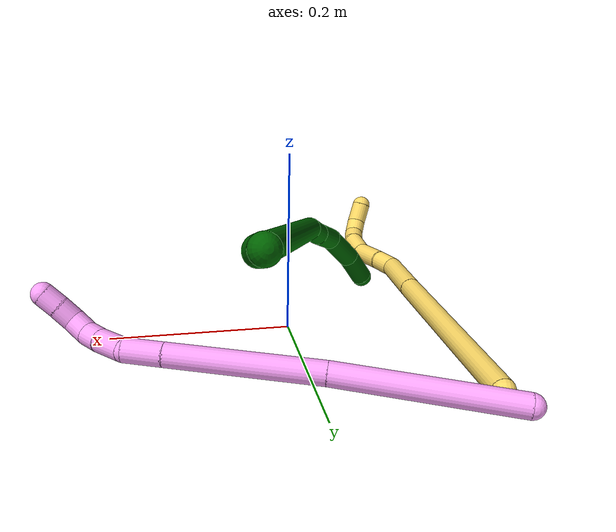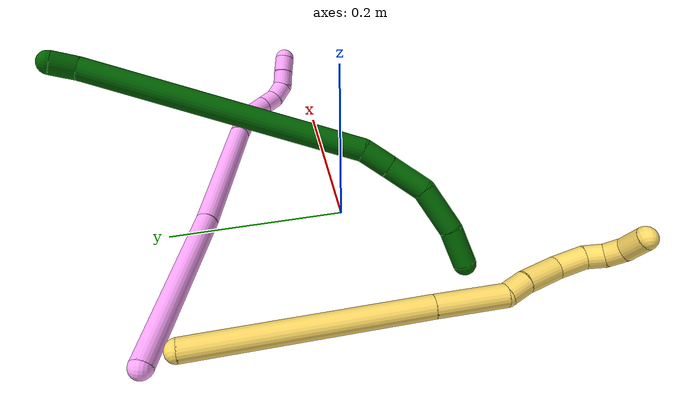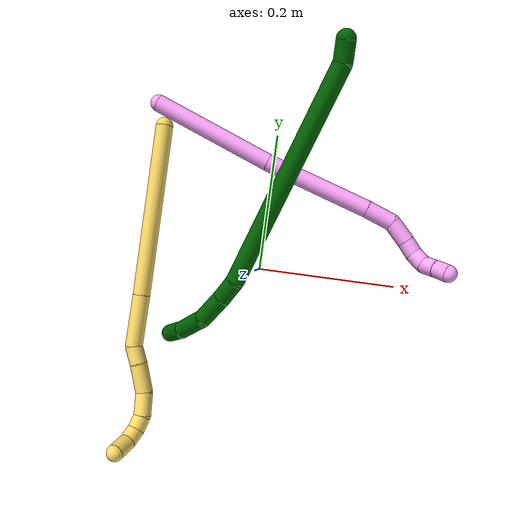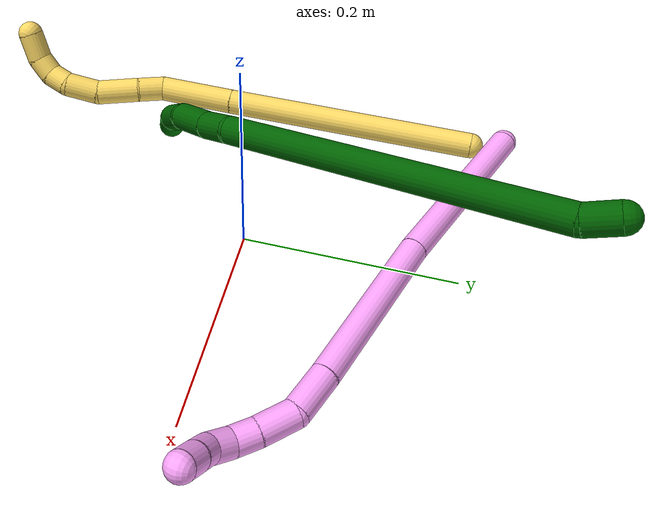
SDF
<sdf version="1.7">
 <world name="default">
  <model name="4">
   <static>0</static>
   <link name="4">
    <collision name="collision-cylinder-e_1_1_4">
     <pose>0.089773 0.014022 0.013473 -0.805356 1.35748 -0.661864</pose>
     <geometry><cylinder><radius>0.0125</radius><length>0.18371</length></cylinder></geometry>
     <surface>
      <friction><ode><mu>1.16</mu><mu2>1.16</mu2><slip1>0</slip1><slip2>0</slip2></ode></friction>
      <contact><ode><kp>1e+06</kp><kd>1</kd><max_vel>0</max_vel><min_depth>0.001</min_depth></ode></contact>
     </surface>
    </collision>
    <visual name="visual-cylinder-e_1_1_4">
     <pose>0.089773 0.014022 0.013473 -0.805356 1.35748 -0.661864</pose>
     <geometry><cylinder><radius>0.0125</radius><length>0.18371</length></cylinder></geometry>
     <material><ambient>1 0.65098 0.996078 1</ambient></material>
    </visual>
    <collision name="collision-cylinder-e_2_4_5">
     <pose>0.257424 0.038102 0.033979 -0.960583 1.41448 -0.837886</pose>
     <geometry><cylinder><radius>0.0125</radius><length>0.157678</length></cylinder></geometry>
     <surface>
      <friction><ode><mu>1.16</mu><mu2>1.16</mu2><slip1>0</slip1><slip2>0</slip2></ode></friction>
      <contact><ode><kp>1e+06</kp><kd>1</kd><max_vel>0</max_vel><min_depth>0.001</min_depth></ode></contact>
     </surface>
    </collision>
    <visual name="visual-cylinder-e_2_4_5">
     <pose>0.257424 0.038102 0.033979 -0.960583 1.41448 -0.837886</pose>
     <geometry><cylinder><radius>0.0125</radius><length>0.157678</length></cylinder></geometry>
     <material><ambient>1 0.65098 0.996078 1</ambient></material>
    </visual>
    <collision name="collision-cylinder-e_3_5_6">
     <pose>0.355517 0.050403 0.043936 -0.654278 1.39051 -0.551714</pose>
     <geometry><cylinder><radius>0.0125</radius><length>0.041097</length></cylinder></geometry>
     <surface>
      <friction><ode><mu>1.16</mu><mu2>1.16</mu2><slip1>0</slip1><slip2>0</slip2></ode></friction>
      <contact><ode><kp>1e+06</kp><kd>1</kd><max_vel>0</max_vel><min_depth>0.001</min_depth></ode></contact>
     </surface>
    </collision>
    <visual name="visual-cylinder-e_3_5_6">
     <pose>0.355517 0.050403 0.043936 -0.654278 1.39051 -0.551714</pose>
     <geometry><cylinder><radius>0.0125</radius><length>0.041097</length></cylinder></geometry>
     <material><ambient>1 0.65098 0.996078 1</ambient></material>
    </visual>
    <collision name="collision-cylinder-e_4_6_7">
     <pose>0.389403 0.055108 0.056036 -0.262188 0.963411 -0.13764</pose>
     <geometry><cylinder><radius>0.0125</radius><length>0.033296</length></cylinder></geometry>
     <surface>
      <friction><ode><mu>1.16</mu><mu2>1.16</mu2><slip1>0</slip1><slip2>0</slip2></ode></friction>
      <contact><ode><kp>1e+06</kp><kd>1</kd><max_vel>0</max_vel><min_depth>0.001</min_depth></ode></contact>
     </surface>
    </collision>
    <visual name="visual-cylinder-e_4_6_7">
     <pose>0.389403 0.055108 0.056036 -0.262188 0.963411 -0.13764</pose>
     <geometry><cylinder><radius>0.0125</radius><length>0.033296</length></cylinder></geometry>
     <material><ambient>1 0.65098 0.996078 1</ambient></material>
    </visual>
    <collision name="collision-cylinder-e_5_7_8">
     <pose>0.411371 0.059747 0.07173 -0.322302 0.879175 -0.1526</pose>
     <geometry><cylinder><radius>0.0125</radius><length>0.021547</length></cylinder></geometry>
     <surface>
      <friction><ode><mu>1.16</mu><mu2>1.16</mu2><slip1>0</slip1><slip2>0</slip2></ode></friction>
      <contact><ode><kp>1e+06</kp><kd>1</kd><max_vel>0</max_vel><min_depth>0.001</min_depth></ode></contact>
     </surface>
    </collision>
    <visual name="visual-cylinder-e_5_7_8">
     <pose>0.411371 0.059747 0.07173 -0.322302 0.879175 -0.1526</pose>
     <geometry><cylinder><radius>0.0125</radius><length>0.021547</length></cylinder></geometry>
     <material><ambient>1 0.65098 0.996078 1</ambient></material>
    </visual>
    <collision name="collision-cylinder-e_6_8_9">
     <pose>0.427626 0.068068 0.082536 -0.961407 0.815439 -0.443104</pose>
     <geometry><cylinder><radius>0.0125</radius><length>0.021859</length></cylinder></geometry>
     <surface>
      <friction><ode><mu>1.16</mu><mu2>1.16</mu2><slip1>0</slip1><slip2>0</slip2></ode></friction>
      <contact><ode><kp>1e+06</kp><kd>1</kd><max_vel>0</max_vel><min_depth>0.001</min_depth></ode></contact>
     </surface>
    </collision>
    <visual name="visual-cylinder-e_6_8_9">
     <pose>0.427626 0.068068 0.082536 -0.961407 0.815439 -0.443104</pose>
     <geometry><cylinder><radius>0.0125</radius><length>0.021859</length></cylinder></geometry>
     <material><ambient>1 0.65098 0.996078 1</ambient></material>
    </visual>
    <collision name="collision-cylinder-e_7_9_10">
     <pose>0.442424 0.08172 0.08602 -1.67762 0.736088 -0.810807</pose>
     <geometry><cylinder><radius>0.0125</radius><length>0.020379</length></cylinder></geometry>
     <surface>
      <friction><ode><mu>1.16</mu><mu2>1.16</mu2><slip1>0</slip1><slip2>0</slip2></ode></friction>
      <contact><ode><kp>1e+06</kp><kd>1</kd><max_vel>0</max_vel><min_depth>0.001</min_depth></ode></contact>
     </surface>
    </collision>
    <visual name="visual-cylinder-e_7_9_10">
     <pose>0.442424 0.08172 0.08602 -1.67762 0.736088 -0.810807</pose>
     <geometry><cylinder><radius>0.0125</radius><length>0.020379</length></cylinder></geometry>
     <material><ambient>1 0.65098 0.996078 1</ambient></material>
    </visual>
    <collision name="collision-cylinder-e_8_10_2">
     <pose>0.456624 0.096311 0.084936 -1.6101 0.804126 -0.832823</pose>
     <geometry><cylinder><radius>0.0125</radius><length>0.020435</length></cylinder></geometry>
     <surface>
      <friction><ode><mu>1.16</mu><mu2>1.16</mu2><slip1>0</slip1><slip2>0</slip2></ode></friction>
      <contact><ode><kp>1e+06</kp><kd>1</kd><max_vel>0</max_vel><min_depth>0.001</min_depth></ode></contact>
     </surface>
    </collision>
    <visual name="visual-cylinder-e_8_10_2">
     <pose>0.456624 0.096311 0.084936 -1.6101 0.804126 -0.832823</pose>
     <geometry><cylinder><radius>0.0125</radius><length>0.020435</length></cylinder></geometry>
     <material><ambient>1 0.65098 0.996078 1</ambient></material>
    </visual>
    <collision name="collision-sphere-2">
     <pose>0.463982 0.103394 0.084658 0 -0 0</pose>
     <geometry><sphere><radius>0.0125</radius></sphere></geometry>
     <surface>
      <friction><ode><mu>1.16</mu><mu2>1.16</mu2><slip1>0</slip1><slip2>0</slip2></ode></friction>
      <contact><ode><kp>1e+06</kp><kd>1</kd><max_vel>0</max_vel><min_depth>0.001</min_depth></ode></contact>
     </surface>
    </collision>
    <visual name="visual-sphere-2">
     <pose>0.463982 0.103394 0.084658 0 -0 0</pose>
     <geometry><sphere><radius>0.0125</radius></sphere></geometry>
     <material><ambient>1 0.65098 0.996078 1</ambient></material>
    </visual>
    <collision name="collision-sphere-10">
     <pose>0.449265 0.089228 0.085215 0 -0 0</pose>
     <geometry><sphere><radius>0.0125</radius></sphere></geometry>
     <surface>
      <friction><ode><mu>1.16</mu><mu2>1.16</mu2><slip1>0</slip1><slip2>0</slip2></ode></friction>
      <contact><ode><kp>1e+06</kp><kd>1</kd><max_vel>0</max_vel><min_depth>0.001</min_depth></ode></contact>
     </surface>
    </collision>
    <visual name="visual-sphere-10">
     <pose>0.449265 0.089228 0.085215 0 -0 0</pose>
     <geometry><sphere><radius>0.0125</radius></sphere></geometry>
     <material><ambient>1 0.65098 0.996078 1</ambient></material>
    </visual>
    <collision name="collision-sphere-9">
     <pose>0.435583 0.074212 0.086825 0 -0 0</pose>
     <geometry><sphere><radius>0.0125</radius></sphere></geometry>
     <surface>
      <friction><ode><mu>1.16</mu><mu2>1.16</mu2><slip1>0</slip1><slip2>0</slip2></ode></friction>
      <contact><ode><kp>1e+06</kp><kd>1</kd><max_vel>0</max_vel><min_depth>0.001</min_depth></ode></contact>
     </surface>
    </collision>
    <visual name="visual-sphere-9">
     <pose>0.435583 0.074212 0.086825 0 -0 0</pose>
     <geometry><sphere><radius>0.0125</radius></sphere></geometry>
     <material><ambient>1 0.65098 0.996078 1</ambient></material>
    </visual>
    <collision name="collision-sphere-4">
     <pose>0.179546 0.028044 0.026946 0 -0 0</pose>
     <geometry><sphere><radius>0.0125</radius></sphere></geometry>
     <surface>
      <friction><ode><mu>1.16</mu><mu2>1.16</mu2><slip1>0</slip1><slip2>0</slip2></ode></friction>
      <contact><ode><kp>1e+06</kp><kd>1</kd><max_vel>0</max_vel><min_depth>0.001</min_depth></ode></contact>
     </surface>
    </collision>
    <visual name="visual-sphere-4">
     <pose>0.179546 0.028044 0.026946 0 -0 0</pose>
     <geometry><sphere><radius>0.0125</radius></sphere></geometry>
     <material><ambient>1 0.65098 0.996078 1</ambient></material>
    </visual>
    <collision name="collision-sphere-1">
     <geometry><sphere><radius>0.0125</radius></sphere></geometry>
     <surface>
      <friction><ode><mu>1.16</mu><mu2>1.16</mu2><slip1>0</slip1><slip2>0</slip2></ode></friction>
      <contact><ode><kp>1e+06</kp><kd>1</kd><max_vel>0</max_vel><min_depth>0.001</min_depth></ode></contact>
     </surface>
    </collision>
    <visual name="visual-sphere-1">
     <geometry><sphere><radius>0.0125</radius></sphere></geometry>
     <material><ambient>1 0.65098 0.996078 1</ambient></material>
    </visual>
    <collision name="collision-sphere-8">
     <pose>0.419669 0.061923 0.078248 0 -0 0</pose>
     <geometry><sphere><radius>0.0125</radius></sphere></geometry>
     <surface>
      <friction><ode><mu>1.16</mu><mu2>1.16</mu2><slip1>0</slip1><slip2>0</slip2></ode></friction>
      <contact><ode><kp>1e+06</kp><kd>1</kd><max_vel>0</max_vel><min_depth>0.001</min_depth></ode></contact>
     </surface>
    </collision>
    <visual name="visual-sphere-8">
     <pose>0.419669 0.061923 0.078248 0 -0 0</pose>
     <geometry><sphere><radius>0.0125</radius></sphere></geometry>
     <material><ambient>1 0.65098 0.996078 1</ambient></material>
    </visual>
    <collision name="collision-sphere-5">
     <pose>0.335302 0.04816 0.041012 0 -0 0</pose>
     <geometry><sphere><radius>0.0125</radius></sphere></geometry>
     <surface>
      <friction><ode><mu>1.16</mu><mu2>1.16</mu2><slip1>0</slip1><slip2>0</slip2></ode></friction>
      <contact><ode><kp>1e+06</kp><kd>1</kd><max_vel>0</max_vel><min_depth>0.001</min_depth></ode></contact>
     </surface>
    </collision>
    <visual name="visual-sphere-5">
     <pose>0.335302 0.04816 0.041012 0 -0 0</pose>
     <geometry><sphere><radius>0.0125</radius></sphere></geometry>
     <material><ambient>1 0.65098 0.996078 1</ambient></material>
    </visual>
    <collision name="collision-sphere-6">
     <pose>0.375732 0.052645 0.04686 0 -0 0</pose>
     <geometry><sphere><radius>0.0125</radius></sphere></geometry>
     <surface>
      <friction><ode><mu>1.16</mu><mu2>1.16</mu2><slip1>0</slip1><slip2>0</slip2></ode></friction>
      <contact><ode><kp>1e+06</kp><kd>1</kd><max_vel>0</max_vel><min_depth>0.001</min_depth></ode></contact>
     </surface>
    </collision>
    <visual name="visual-sphere-6">
     <pose>0.375732 0.052645 0.04686 0 -0 0</pose>
     <geometry><sphere><radius>0.0125</radius></sphere></geometry>
     <material><ambient>1 0.65098 0.996078 1</ambient></material>
    </visual>
    <collision name="collision-sphere-7">
     <pose>0.403073 0.057571 0.065213 0 -0 0</pose>
     <geometry><sphere><radius>0.0125</radius></sphere></geometry>
     <surface>
      <friction><ode><mu>1.16</mu><mu2>1.16</mu2><slip1>0</slip1><slip2>0</slip2></ode></friction>
      <contact><ode><kp>1e+06</kp><kd>1</kd><max_vel>0</max_vel><min_depth>0.001</min_depth></ode></contact>
     </surface>
    </collision>
    <visual name="visual-sphere-7">
     <pose>0.403073 0.057571 0.065213 0 -0 0</pose>
     <geometry><sphere><radius>0.0125</radius></sphere></geometry>
     <material><ambient>1 0.65098 0.996078 1</ambient></material>
    </visual>
    <inertial>
     <pose>0.242433 0.037797 0.036685 0 -0 0</pose>
     <mass>0.5</mass>
     <inertia>
      <ixx>5.6e-05</ixx>
      <ixy>0</ixy>
      <ixz>0</ixz>
      <iyy>0.000755</iyy>
      <iyz>0</iyz>
      <izz>-0.000977</izz>
     </inertia>
    </inertial>
   </link>
   <pose>-0.178939 0.221906 0.012511 1.73279 0.065913 -0.203263</pose>
  </model>
  <model name="5">
   <static>0</static>
   <link name="5">
    <collision name="collision-cylinder-e_1_1_4">
     <pose>-0.086447 -0.088057 0.022417 1.32152 -0.76048 -0.602468</pose>
     <geometry><cylinder><radius>0.0125</radius><length>0.250836</length></cylinder></geometry>
     <surface>
      <friction><ode><mu>1.16</mu><mu2>1.16</mu2><slip1>0</slip1><slip2>0</slip2></ode></friction>
      <contact><ode><kp>1e+06</kp><kd>1</kd><max_vel>0</max_vel><min_depth>0.001</min_depth></ode></contact>
     </surface>
    </collision>
    <visual name="visual-cylinder-e_1_1_4">
     <pose>-0.086447 -0.088057 0.022417 1.32152 -0.76048 -0.602468</pose>
     <geometry><cylinder><radius>0.0125</radius><length>0.250836</length></cylinder></geometry>
     <material><ambient>1 0.858824 0.4 1</ambient></material>
    </visual>
    <collision name="collision-cylinder-e_2_4_5">
     <pose>-0.199134 -0.202879 0.051085 1.34133 -0.762247 -0.615596</pose>
     <geometry><cylinder><radius>0.0125</radius><length>0.075999</length></cylinder></geometry>
     <surface>
      <friction><ode><mu>1.16</mu><mu2>1.16</mu2><slip1>0</slip1><slip2>0</slip2></ode></friction>
      <contact><ode><kp>1e+06</kp><kd>1</kd><max_vel>0</max_vel><min_depth>0.001</min_depth></ode></contact>
     </surface>
    </collision>
    <visual name="visual-cylinder-e_2_4_5">
     <pose>-0.199134 -0.202879 0.051085 1.34133 -0.762247 -0.615596</pose>
     <geometry><cylinder><radius>0.0125</radius><length>0.075999</length></cylinder></geometry>
     <material><ambient>1 0.858824 0.4 1</ambient></material>
    </visual>
    <collision name="collision-cylinder-e_3_5_6">
     <pose>-0.233508 -0.237099 0.064851 0.781564 -0.655146 -0.278179</pose>
     <geometry><cylinder><radius>0.0125</radius><length>0.026701</length></cylinder></geometry>
     <surface>
      <friction><ode><mu>1.16</mu><mu2>1.16</mu2><slip1>0</slip1><slip2>0</slip2></ode></friction>
      <contact><ode><kp>1e+06</kp><kd>1</kd><max_vel>0</max_vel><min_depth>0.001</min_depth></ode></contact>
     </surface>
    </collision>
    <visual name="visual-cylinder-e_3_5_6">
     <pose>-0.233508 -0.237099 0.064851 0.781564 -0.655146 -0.278179</pose>
     <geometry><cylinder><radius>0.0125</radius><length>0.026701</length></cylinder></geometry>
     <material><ambient>1 0.858824 0.4 1</ambient></material>
    </visual>
    <collision name="collision-cylinder-e_4_6_7">
     <pose>-0.254011 -0.258874 0.082563 0.9519 -0.613169 -0.323511</pose>
     <geometry><cylinder><radius>0.0125</radius><length>0.042987</length></cylinder></geometry>
     <surface>
      <friction><ode><mu>1.16</mu><mu2>1.16</mu2><slip1>0</slip1><slip2>0</slip2></ode></friction>
      <contact><ode><kp>1e+06</kp><kd>1</kd><max_vel>0</max_vel><min_depth>0.001</min_depth></ode></contact>
     </surface>
    </collision>
    <visual name="visual-cylinder-e_4_6_7">
     <pose>-0.254011 -0.258874 0.082563 0.9519 -0.613169 -0.323511</pose>
     <geometry><cylinder><radius>0.0125</radius><length>0.042987</length></cylinder></geometry>
     <material><ambient>1 0.858824 0.4 1</ambient></material>
    </visual>
    <collision name="collision-cylinder-e_5_7_8">
     <pose>-0.27971 -0.282455 0.097252 1.11936 -0.91318 -0.597092</pose>
     <geometry><cylinder><radius>0.0125</radius><length>0.033688</length></cylinder></geometry>
     <surface>
      <friction><ode><mu>1.16</mu><mu2>1.16</mu2><slip1>0</slip1><slip2>0</slip2></ode></friction>
      <contact><ode><kp>1e+06</kp><kd>1</kd><max_vel>0</max_vel><min_depth>0.001</min_depth></ode></contact>
     </surface>
    </collision>
    <visual name="visual-cylinder-e_5_7_8">
     <pose>-0.27971 -0.282455 0.097252 1.11936 -0.91318 -0.597092</pose>
     <geometry><cylinder><radius>0.0125</radius><length>0.033688</length></cylinder></geometry>
     <material><ambient>1 0.858824 0.4 1</ambient></material>
    </visual>
    <collision name="collision-cylinder-e_6_8_9">
     <pose>-0.301855 -0.297456 0.100756 1.74134 -0.987077 -1.13651</pose>
     <geometry><cylinder><radius>0.0125</radius><length>0.021124</length></cylinder></geometry>
     <surface>
      <friction><ode><mu>1.16</mu><mu2>1.16</mu2><slip1>0</slip1><slip2>0</slip2></ode></friction>
      <contact><ode><kp>1e+06</kp><kd>1</kd><max_vel>0</max_vel><min_depth>0.001</min_depth></ode></contact>
     </surface>
    </collision>
    <visual name="visual-cylinder-e_6_8_9">
     <pose>-0.301855 -0.297456 0.100756 1.74134 -0.987077 -1.13651</pose>
     <geometry><cylinder><radius>0.0125</radius><length>0.021124</length></cylinder></geometry>
     <material><ambient>1 0.858824 0.4 1</ambient></material>
    </visual>
    <collision name="collision-cylinder-e_7_9_10">
     <pose>-0.320863 -0.304113 0.097837 2.69664 -1.364 -2.59817</pose>
     <geometry><cylinder><radius>0.0125</radius><length>0.020833</length></cylinder></geometry>
     <surface>
      <friction><ode><mu>1.16</mu><mu2>1.16</mu2><slip1>0</slip1><slip2>0</slip2></ode></friction>
      <contact><ode><kp>1e+06</kp><kd>1</kd><max_vel>0</max_vel><min_depth>0.001</min_depth></ode></contact>
     </surface>
    </collision>
    <visual name="visual-cylinder-e_7_9_10">
     <pose>-0.320863 -0.304113 0.097837 2.69664 -1.364 -2.59817</pose>
     <geometry><cylinder><radius>0.0125</radius><length>0.020833</length></cylinder></geometry>
     <material><ambient>1 0.858824 0.4 1</ambient></material>
    </visual>
    <collision name="collision-cylinder-e_8_10_2">
     <pose>-0.343874 -0.300829 0.092482 -2.2544 -1.17051 1.89746</pose>
     <geometry><cylinder><radius>0.0125</radius><length>0.027833</length></cylinder></geometry>
     <surface>
      <friction><ode><mu>1.16</mu><mu2>1.16</mu2><slip1>0</slip1><slip2>0</slip2></ode></friction>
      <contact><ode><kp>1e+06</kp><kd>1</kd><max_vel>0</max_vel><min_depth>0.001</min_depth></ode></contact>
     </surface>
    </collision>
    <visual name="visual-cylinder-e_8_10_2">
     <pose>-0.343874 -0.300829 0.092482 -2.2544 -1.17051 1.89746</pose>
     <geometry><cylinder><radius>0.0125</radius><length>0.027833</length></cylinder></geometry>
     <material><ambient>1 0.858824 0.4 1</ambient></material>
    </visual>
    <collision name="collision-sphere-2">
     <pose>-0.35669 -0.296625 0.089057 0 -0 0</pose>
     <geometry><sphere><radius>0.0125</radius></sphere></geometry>
     <surface>
      <friction><ode><mu>1.16</mu><mu2>1.16</mu2><slip1>0</slip1><slip2>0</slip2></ode></friction>
      <contact><ode><kp>1e+06</kp><kd>1</kd><max_vel>0</max_vel><min_depth>0.001</min_depth></ode></contact>
     </surface>
    </collision>
    <visual name="visual-sphere-2">
     <pose>-0.35669 -0.296625 0.089057 0 -0 0</pose>
     <geometry><sphere><radius>0.0125</radius></sphere></geometry>
     <material><ambient>1 0.858824 0.4 1</ambient></material>
    </visual>
    <collision name="collision-sphere-10">
     <pose>-0.331057 -0.305034 0.095907 0 -0 0</pose>
     <geometry><sphere><radius>0.0125</radius></sphere></geometry>
     <surface>
      <friction><ode><mu>1.16</mu><mu2>1.16</mu2><slip1>0</slip1><slip2>0</slip2></ode></friction>
      <contact><ode><kp>1e+06</kp><kd>1</kd><max_vel>0</max_vel><min_depth>0.001</min_depth></ode></contact>
     </surface>
    </collision>
    <visual name="visual-sphere-10">
     <pose>-0.331057 -0.305034 0.095907 0 -0 0</pose>
     <geometry><sphere><radius>0.0125</radius></sphere></geometry>
     <material><ambient>1 0.858824 0.4 1</ambient></material>
    </visual>
    <collision name="collision-sphere-9">
     <pose>-0.310668 -0.303193 0.099768 0 -0 0</pose>
     <geometry><sphere><radius>0.0125</radius></sphere></geometry>
     <surface>
      <friction><ode><mu>1.16</mu><mu2>1.16</mu2><slip1>0</slip1><slip2>0</slip2></ode></friction>
      <contact><ode><kp>1e+06</kp><kd>1</kd><max_vel>0</max_vel><min_depth>0.001</min_depth></ode></contact>
     </surface>
    </collision>
    <visual name="visual-sphere-9">
     <pose>-0.310668 -0.303193 0.099768 0 -0 0</pose>
     <geometry><sphere><radius>0.0125</radius></sphere></geometry>
     <material><ambient>1 0.858824 0.4 1</ambient></material>
    </visual>
    <collision name="collision-sphere-4">
     <pose>-0.172893 -0.176115 0.044834 0 -0 0</pose>
     <geometry><sphere><radius>0.0125</radius></sphere></geometry>
     <surface>
      <friction><ode><mu>1.16</mu><mu2>1.16</mu2><slip1>0</slip1><slip2>0</slip2></ode></friction>
      <contact><ode><kp>1e+06</kp><kd>1</kd><max_vel>0</max_vel><min_depth>0.001</min_depth></ode></contact>
     </surface>
    </collision>
    <visual name="visual-sphere-4">
     <pose>-0.172893 -0.176115 0.044834 0 -0 0</pose>
     <geometry><sphere><radius>0.0125</radius></sphere></geometry>
     <material><ambient>1 0.858824 0.4 1</ambient></material>
    </visual>
    <collision name="collision-sphere-1">
     <geometry><sphere><radius>0.0125</radius></sphere></geometry>
     <surface>
      <friction><ode><mu>1.16</mu><mu2>1.16</mu2><slip1>0</slip1><slip2>0</slip2></ode></friction>
      <contact><ode><kp>1e+06</kp><kd>1</kd><max_vel>0</max_vel><min_depth>0.001</min_depth></ode></contact>
     </surface>
    </collision>
    <visual name="visual-sphere-1">
     <geometry><sphere><radius>0.0125</radius></sphere></geometry>
     <material><ambient>1 0.858824 0.4 1</ambient></material>
    </visual>
    <collision name="collision-sphere-8">
     <pose>-0.293042 -0.29172 0.101744 0 -0 0</pose>
     <geometry><sphere><radius>0.0125</radius></sphere></geometry>
     <surface>
      <friction><ode><mu>1.16</mu><mu2>1.16</mu2><slip1>0</slip1><slip2>0</slip2></ode></friction>
      <contact><ode><kp>1e+06</kp><kd>1</kd><max_vel>0</max_vel><min_depth>0.001</min_depth></ode></contact>
     </surface>
    </collision>
    <visual name="visual-sphere-8">
     <pose>-0.293042 -0.29172 0.101744 0 -0 0</pose>
     <geometry><sphere><radius>0.0125</radius></sphere></geometry>
     <material><ambient>1 0.858824 0.4 1</ambient></material>
    </visual>
    <collision name="collision-sphere-5">
     <pose>-0.225374 -0.229642 0.057337 0 -0 0</pose>
     <geometry><sphere><radius>0.0125</radius></sphere></geometry>
     <surface>
      <friction><ode><mu>1.16</mu><mu2>1.16</mu2><slip1>0</slip1><slip2>0</slip2></ode></friction>
      <contact><ode><kp>1e+06</kp><kd>1</kd><max_vel>0</max_vel><min_depth>0.001</min_depth></ode></contact>
     </surface>
    </collision>
    <visual name="visual-sphere-5">
     <pose>-0.225374 -0.229642 0.057337 0 -0 0</pose>
     <geometry><sphere><radius>0.0125</radius></sphere></geometry>
     <material><ambient>1 0.858824 0.4 1</ambient></material>
    </visual>
    <collision name="collision-sphere-6">
     <pose>-0.241642 -0.244556 0.072366 0 -0 0</pose>
     <geometry><sphere><radius>0.0125</radius></sphere></geometry>
     <surface>
      <friction><ode><mu>1.16</mu><mu2>1.16</mu2><slip1>0</slip1><slip2>0</slip2></ode></friction>
      <contact><ode><kp>1e+06</kp><kd>1</kd><max_vel>0</max_vel><min_depth>0.001</min_depth></ode></contact>
     </surface>
    </collision>
    <visual name="visual-sphere-6">
     <pose>-0.241642 -0.244556 0.072366 0 -0 0</pose>
     <geometry><sphere><radius>0.0125</radius></sphere></geometry>
     <material><ambient>1 0.858824 0.4 1</ambient></material>
    </visual>
    <collision name="collision-sphere-7">
     <pose>-0.266379 -0.273191 0.092761 0 -0 0</pose>
     <geometry><sphere><radius>0.0125</radius></sphere></geometry>
     <surface>
      <friction><ode><mu>1.16</mu><mu2>1.16</mu2><slip1>0</slip1><slip2>0</slip2></ode></friction>
      <contact><ode><kp>1e+06</kp><kd>1</kd><max_vel>0</max_vel><min_depth>0.001</min_depth></ode></contact>
     </surface>
    </collision>
    <visual name="visual-sphere-7">
     <pose>-0.266379 -0.273191 0.092761 0 -0 0</pose>
     <geometry><sphere><radius>0.0125</radius></sphere></geometry>
     <material><ambient>1 0.858824 0.4 1</ambient></material>
    </visual>
    <inertial>
     <pose>-0.172053 -0.170945 0.049606 0 -0 0</pose>
     <mass>0.5</mass>
     <inertia>
      <ixx>0.000232</ixx>
      <ixy>0</ixy>
      <ixz>0</ixz>
      <iyy>0.000222</iyy>
      <iyz>0</iyz>
      <izz>0.001931</izz>
     </inertia>
    </inertial>
   </link>
   <pose>-0.166901 0.1902 0.011502 1.51103 0.789377 1.34769</pose>
  </model>
  <model name="6">
   <static>0</static>
   <link name="6">
    <collision name="collision-cylinder-e_1_1_4">
     <pose>0.000668 -0.000371 -0.013835 3.11482 0.048213 2.12786</pose>
     <geometry><cylinder><radius>0.0125</radius><length>0.027712</length></cylinder></geometry>
     <surface>
      <friction><ode><mu>1.16</mu><mu2>1.16</mu2><slip1>0</slip1><slip2>0</slip2></ode></friction>
      <contact><ode><kp>1e+06</kp><kd>1</kd><max_vel>0</max_vel><min_depth>0.001</min_depth></ode></contact>
     </surface>
    </collision>
    <visual name="visual-cylinder-e_1_1_4">
     <pose>0.000668 -0.000371 -0.013835 3.11482 0.048213 2.12786</pose>
     <geometry><cylinder><radius>0.0125</radius><length>0.027712</length></cylinder></geometry>
     <material><ambient>0 0.392157 0.003922 1</ambient></material>
    </visual>
    <collision name="collision-cylinder-e_2_4_5">
     <pose>0.05943 -0.017976 -0.167654 3.01909 0.39072 2.54052</pose>
     <geometry><cylinder><radius>0.0125</radius><length>0.305075</length></cylinder></geometry>
     <surface>
      <friction><ode><mu>1.16</mu><mu2>1.16</mu2><slip1>0</slip1><slip2>0</slip2></ode></friction>
      <contact><ode><kp>1e+06</kp><kd>1</kd><max_vel>0</max_vel><min_depth>0.001</min_depth></ode></contact>
     </surface>
    </collision>
    <visual name="visual-cylinder-e_2_4_5">
     <pose>0.05943 -0.017976 -0.167654 3.01909 0.39072 2.54052</pose>
     <geometry><cylinder><radius>0.0125</radius><length>0.305075</length></cylinder></geometry>
     <material><ambient>0 0.392157 0.003922 1</ambient></material>
    </visual>
    <collision name="collision-cylinder-e_3_5_6">
     <pose>0.123626 -0.041634 -0.321126 2.69715 0.387781 1.43087</pose>
     <geometry><cylinder><radius>0.0125</radius><length>0.032273</length></cylinder></geometry>
     <surface>
      <friction><ode><mu>1.16</mu><mu2>1.16</mu2><slip1>0</slip1><slip2>0</slip2></ode></friction>
      <contact><ode><kp>1e+06</kp><kd>1</kd><max_vel>0</max_vel><min_depth>0.001</min_depth></ode></contact>
     </surface>
    </collision>
    <visual name="visual-cylinder-e_3_5_6">
     <pose>0.123626 -0.041634 -0.321126 2.69715 0.387781 1.43087</pose>
     <geometry><cylinder><radius>0.0125</radius><length>0.032273</length></cylinder></geometry>
     <material><ambient>0 0.392157 0.003922 1</ambient></material>
    </visual>
    <collision name="collision-cylinder-e_4_6_7">
     <pose>0.139422 -0.05698 -0.352164 2.67122 0.457518 1.54206</pose>
     <geometry><cylinder><radius>0.0125</radius><length>0.043891</length></cylinder></geometry>
     <surface>
      <friction><ode><mu>1.16</mu><mu2>1.16</mu2><slip1>0</slip1><slip2>0</slip2></ode></friction>
      <contact><ode><kp>1e+06</kp><kd>1</kd><max_vel>0</max_vel><min_depth>0.001</min_depth></ode></contact>
     </surface>
    </collision>
    <visual name="visual-cylinder-e_4_6_7">
     <pose>0.139422 -0.05698 -0.352164 2.67122 0.457518 1.54206</pose>
     <geometry><cylinder><radius>0.0125</radius><length>0.043891</length></cylinder></geometry>
     <material><ambient>0 0.392157 0.003922 1</ambient></material>
    </visual>
    <collision name="collision-cylinder-e_5_7_8">
     <pose>0.156939 -0.084211 -0.385496 2.28225 0.313029 0.66333</pose>
     <geometry><cylinder><radius>0.0125</radius><length>0.050813</length></cylinder></geometry>
     <surface>
      <friction><ode><mu>1.16</mu><mu2>1.16</mu2><slip1>0</slip1><slip2>0</slip2></ode></friction>
      <contact><ode><kp>1e+06</kp><kd>1</kd><max_vel>0</max_vel><min_depth>0.001</min_depth></ode></contact>
     </surface>
    </collision>
    <visual name="visual-cylinder-e_5_7_8">
     <pose>0.156939 -0.084211 -0.385496 2.28225 0.313029 0.66333</pose>
     <geometry><cylinder><radius>0.0125</radius><length>0.050813</length></cylinder></geometry>
     <material><ambient>0 0.392157 0.003922 1</ambient></material>
    </visual>
    <collision name="collision-cylinder-e_6_8_2">
     <pose>0.167818 -0.119481 -0.411657 2.11987 0.152444 0.270845</pose>
     <geometry><cylinder><radius>0.0125</radius><length>0.040236</length></cylinder></geometry>
     <surface>
      <friction><ode><mu>1.16</mu><mu2>1.16</mu2><slip1>0</slip1><slip2>0</slip2></ode></friction>
      <contact><ode><kp>1e+06</kp><kd>1</kd><max_vel>0</max_vel><min_depth>0.001</min_depth></ode></contact>
     </surface>
    </collision>
    <visual name="visual-cylinder-e_6_8_2">
     <pose>0.167818 -0.119481 -0.411657 2.11987 0.152444 0.270845</pose>
     <geometry><cylinder><radius>0.0125</radius><length>0.040236</length></cylinder></geometry>
     <material><ambient>0 0.392157 0.003922 1</ambient></material>
    </visual>
    <collision name="collision-sphere-2">
     <pose>0.170873 -0.136443 -0.422035 0 -0 0</pose>
     <geometry><sphere><radius>0.0125</radius></sphere></geometry>
     <surface>
      <friction><ode><mu>1.16</mu><mu2>1.16</mu2><slip1>0</slip1><slip2>0</slip2></ode></friction>
      <contact><ode><kp>1e+06</kp><kd>1</kd><max_vel>0</max_vel><min_depth>0.001</min_depth></ode></contact>
     </surface>
    </collision>
    <visual name="visual-sphere-2">
     <pose>0.170873 -0.136443 -0.422035 0 -0 0</pose>
     <geometry><sphere><radius>0.0125</radius></sphere></geometry>
     <material><ambient>0 0.392157 0.003922 1</ambient></material>
    </visual>
    <collision name="collision-sphere-4">
     <pose>0.001336 -0.000741 -0.02767 0 -0 0</pose>
     <geometry><sphere><radius>0.0125</radius></sphere></geometry>
     <surface>
      <friction><ode><mu>1.16</mu><mu2>1.16</mu2><slip1>0</slip1><slip2>0</slip2></ode></friction>
      <contact><ode><kp>1e+06</kp><kd>1</kd><max_vel>0</max_vel><min_depth>0.001</min_depth></ode></contact>
     </surface>
    </collision>
    <visual name="visual-sphere-4">
     <pose>0.001336 -0.000741 -0.02767 0 -0 0</pose>
     <geometry><sphere><radius>0.0125</radius></sphere></geometry>
     <material><ambient>0 0.392157 0.003922 1</ambient></material>
    </visual>
    <collision name="collision-sphere-1">
     <geometry><sphere><radius>0.0125</radius></sphere></geometry>
     <surface>
      <friction><ode><mu>1.16</mu><mu2>1.16</mu2><slip1>0</slip1><slip2>0</slip2></ode></friction>
      <contact><ode><kp>1e+06</kp><kd>1</kd><max_vel>0</max_vel><min_depth>0.001</min_depth></ode></contact>
     </surface>
    </collision>
    <visual name="visual-sphere-1">
     <geometry><sphere><radius>0.0125</radius></sphere></geometry>
     <material><ambient>0 0.392157 0.003922 1</ambient></material>
    </visual>
    <collision name="collision-sphere-8">
     <pose>0.164763 -0.102519 -0.401279 0 -0 0</pose>
     <geometry><sphere><radius>0.0125</radius></sphere></geometry>
     <surface>
      <friction><ode><mu>1.16</mu><mu2>1.16</mu2><slip1>0</slip1><slip2>0</slip2></ode></friction>
      <contact><ode><kp>1e+06</kp><kd>1</kd><max_vel>0</max_vel><min_depth>0.001</min_depth></ode></contact>
     </surface>
    </collision>
    <visual name="visual-sphere-8">
     <pose>0.164763 -0.102519 -0.401279 0 -0 0</pose>
     <geometry><sphere><radius>0.0125</radius></sphere></geometry>
     <material><ambient>0 0.392157 0.003922 1</ambient></material>
    </visual>
    <collision name="collision-sphere-5">
     <pose>0.117525 -0.035211 -0.307639 0 -0 0</pose>
     <geometry><sphere><radius>0.0125</radius></sphere></geometry>
     <surface>
      <friction><ode><mu>1.16</mu><mu2>1.16</mu2><slip1>0</slip1><slip2>0</slip2></ode></friction>
      <contact><ode><kp>1e+06</kp><kd>1</kd><max_vel>0</max_vel><min_depth>0.001</min_depth></ode></contact>
     </surface>
    </collision>
    <visual name="visual-sphere-5">
     <pose>0.117525 -0.035211 -0.307639 0 -0 0</pose>
     <geometry><sphere><radius>0.0125</radius></sphere></geometry>
     <material><ambient>0 0.392157 0.003922 1</ambient></material>
    </visual>
    <collision name="collision-sphere-6">
     <pose>0.129728 -0.048057 -0.334613 0 -0 0</pose>
     <geometry><sphere><radius>0.0125</radius></sphere></geometry>
     <surface>
      <friction><ode><mu>1.16</mu><mu2>1.16</mu2><slip1>0</slip1><slip2>0</slip2></ode></friction>
      <contact><ode><kp>1e+06</kp><kd>1</kd><max_vel>0</max_vel><min_depth>0.001</min_depth></ode></contact>
     </surface>
    </collision>
    <visual name="visual-sphere-6">
     <pose>0.129728 -0.048057 -0.334613 0 -0 0</pose>
     <geometry><sphere><radius>0.0125</radius></sphere></geometry>
     <material><ambient>0 0.392157 0.003922 1</ambient></material>
    </visual>
    <collision name="collision-sphere-7">
     <pose>0.149116 -0.065903 -0.369714 0 -0 0</pose>
     <geometry><sphere><radius>0.0125</radius></sphere></geometry>
     <surface>
      <friction><ode><mu>1.16</mu><mu2>1.16</mu2><slip1>0</slip1><slip2>0</slip2></ode></friction>
      <contact><ode><kp>1e+06</kp><kd>1</kd><max_vel>0</max_vel><min_depth>0.001</min_depth></ode></contact>
     </surface>
    </collision>
    <visual name="visual-sphere-7">
     <pose>0.149116 -0.065903 -0.369714 0 -0 0</pose>
     <geometry><sphere><radius>0.0125</radius></sphere></geometry>
     <material><ambient>0 0.392157 0.003922 1</ambient></material>
    </visual>
    <inertial>
     <pose>0.08597 -0.036851 -0.227005 0 -0 0</pose>
     <mass>0.5</mass>
     <inertia>
      <ixx>-0.000518</ixx>
      <ixy>0</ixy>
      <ixz>0</ixz>
      <iyy>0.003261</iyy>
      <iyz>0</iyz>
      <izz>-0.00066</izz>
     </inertia>
    </inertial>
   </link>
   <pose>0.070705 0.285391 0.195832 1.14702 -0.485068 -2.86296</pose>
  </model>
 </world>
</sdf>
